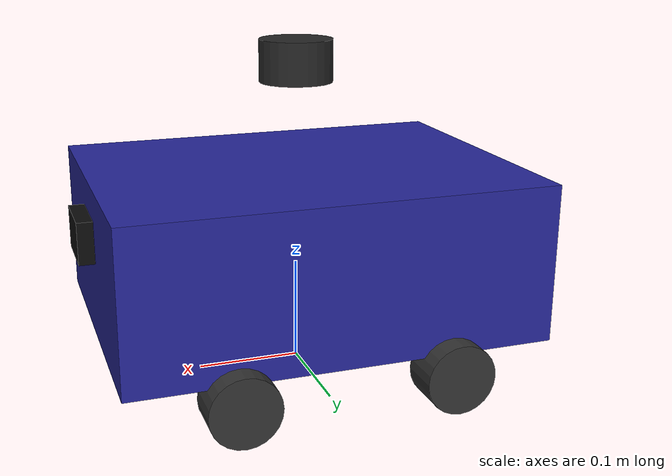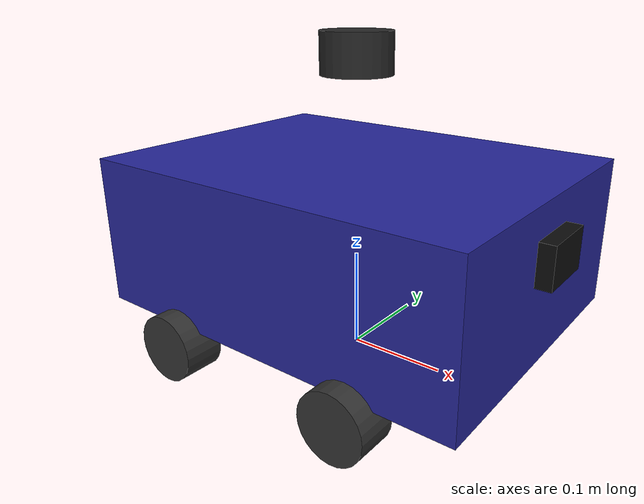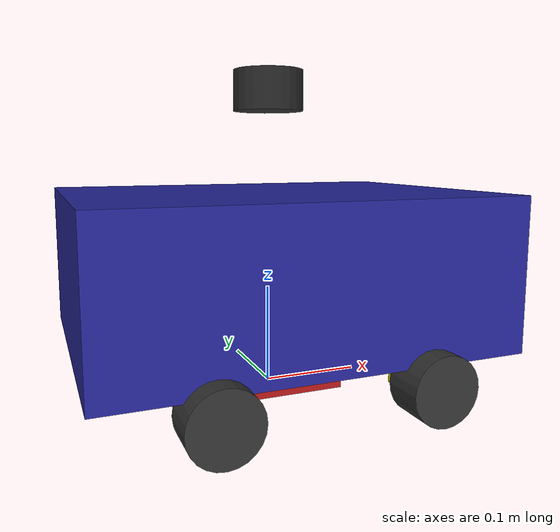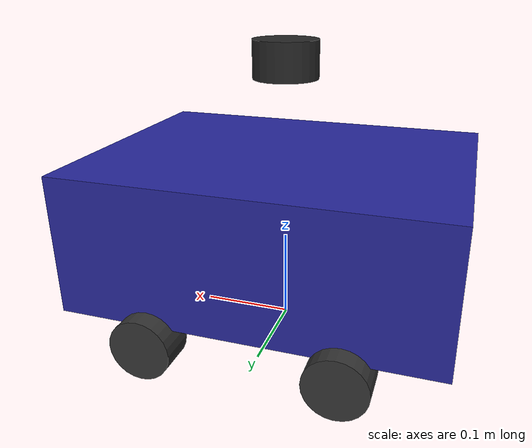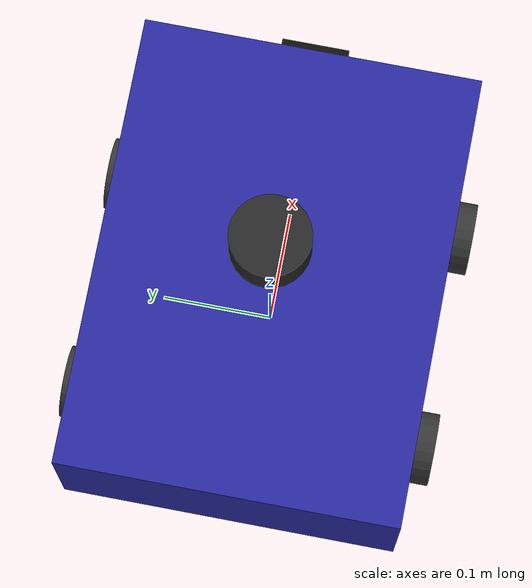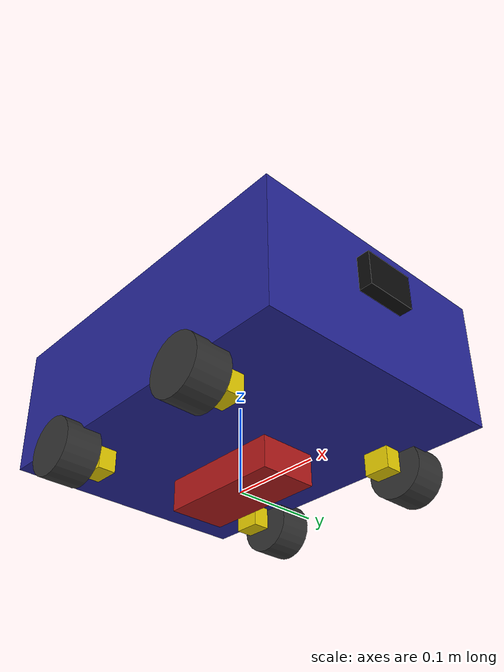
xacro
<?xml version="1.0"?>
<robot name="delivery_robot" xmlns:xacro="http://www.ros.org/wiki/xacro">

  <!-- ==================== Arguments ======================= -->
  <!--
    use_static_odom: When true, odom->base_footprint is a fixed (static) joint.
                     Set to false when ESP32 publishes real odometry on /odom.
  -->
  <xacro:arg name="use_static_odom" default="true"/>
  <!--
    use_gazebo: When true, includes gazebo.xacro for simulation plugins.
                Set to false for real robot operation.
  -->
  <xacro:arg name="use_gazebo" default="false"/>

  <!-- ==================== Includes ======================== -->
  <xacro:include filename="$(find robot_description)/urdf/materials.xacro"/>
  <xacro:include filename="$(find robot_description)/urdf/macros.xacro"/>

  <xacro:if value="$(arg use_gazebo)">
    <xacro:include filename="$(find robot_description)/urdf/gazebo.xacro"/>
  </xacro:if>

  <!-- ==================== Properties ====================== -->
  <!-- Chassis dimensions -->
  <xacro:property name="chassis_length"  value="0.40"/>
  <xacro:property name="chassis_width"   value="0.30"/>
  <xacro:property name="chassis_height"  value="0.15"/>
  <xacro:property name="chassis_mass"    value="3.0"/>
  <!-- Ground clearance: distance from ground to chassis bottom -->
  <xacro:property name="ground_clearance" value="0.05"/>

  <!-- Drive wheels -->
  <xacro:property name="wheel_radius"    value="0.033"/>
  <xacro:property name="wheel_width"     value="0.040"/>
  <xacro:property name="wheel_mass"      value="0.100"/>
  <xacro:property name="wheel_separation" value="0.30"/>
  <xacro:property name="wheel_base"       value="0.20"/>
  <!-- Wheel center Z = wheel_radius (so wheel bottom touches ground at z=0) -->
  <!-- But base_link is at ground_clearance above ground, so wheel z relative to base_link: -->
  <xacro:property name="wheel_z_offset"  value="${wheel_radius - ground_clearance}"/>

  <!-- Caster wheel -->
  <xacro:property name="caster_radius"   value="0.020"/>
  <xacro:property name="caster_mass"     value="0.050"/>

  <!-- Encoders -->
  <xacro:property name="enc_x" value="0.030"/>
  <xacro:property name="enc_y" value="0.020"/>
  <xacro:property name="enc_z" value="0.025"/>
  <xacro:property name="enc_mass" value="0.020"/>

  <!-- RPLidar C1M1 -->
  <xacro:property name="lidar_radius"  value="0.035"/>
  <xacro:property name="lidar_height"  value="0.040"/>
  <xacro:property name="lidar_mass"    value="0.190"/>
  <xacro:property name="lidar_z_offset" value="0.10"/>

  <!-- UGREEN Webcam -->
  <xacro:property name="cam_x_size"  value="0.030"/>
  <xacro:property name="cam_y_size"  value="0.060"/>
  <xacro:property name="cam_z_size"  value="0.040"/>
  <xacro:property name="cam_mass"    value="0.050"/>
  <xacro:property name="cam_x_offset" value="0.20"/>
  <xacro:property name="cam_z_offset" value="0.10"/>

  <!-- Raspberry Pi 4 -->
  <xacro:property name="rpi_x"  value="0.085"/>
  <xacro:property name="rpi_y"  value="0.056"/>
  <xacro:property name="rpi_z"  value="0.017"/>
  <xacro:property name="rpi_mass" value="0.045"/>
  <xacro:property name="rpi_x_offset" value="-0.05"/>
  <xacro:property name="rpi_z_offset" value="0.02"/>

  <!-- IMU (small PCB module) -->
  <xacro:property name="imu_x"  value="0.020"/>
  <xacro:property name="imu_y"  value="0.020"/>
  <xacro:property name="imu_z"  value="0.005"/>
  <xacro:property name="imu_mass" value="0.005"/>
  <xacro:property name="imu_x_offset" value="0.05"/>
  <xacro:property name="imu_y_offset" value="0.0"/>
  <xacro:property name="imu_z_offset" value="0.01"/>

  <!-- Battery (18650 4S pack) -->
  <xacro:property name="bat_x"  value="0.14"/>
  <xacro:property name="bat_y"  value="0.065"/>
  <xacro:property name="bat_z"  value="0.035"/>
  <xacro:property name="bat_mass" value="0.600"/>
  <xacro:property name="bat_x_offset" value="0.0"/>
  <xacro:property name="bat_z_offset" value="-0.04"/>

  <!--                     BASE_LINK (Chassis)                      -->
  <!--
    base_link is the robot's reference frame.
    Origin: center of the chassis, at ground_clearance above ground.
    X+ = forward, Y+ = left, Z+ = up (ROS standard).
  -->
  <link name="base_link">
    <visual>
      <geometry>
        <box size="${chassis_length} ${chassis_width} ${chassis_height}"/>
      </geometry>
      <material name="chassis_blue"/>
      <origin xyz="0 0 ${chassis_height/2}" rpy="0 0 0"/>
    </visual>
    <collision>
      <geometry>
        <box size="${chassis_length} ${chassis_width} ${chassis_height}"/>
      </geometry>
      <origin xyz="0 0 ${chassis_height/2}" rpy="0 0 0"/>
    </collision>
    <xacro:box_inertia mass="${chassis_mass}" x="${chassis_length}" y="${chassis_width}" z="${chassis_height}"/>
  </link>

  <!--                     BASE_FOOTPRINT                            -->
  <!--
    base_footprint is the ground projection of base_link.
    This is the standard ROS convention: the robot's "foot" on the floor.
    Nav2 uses this as the base_frame for costmaps.
  -->
  <link name="base_footprint"/>

  <joint name="base_footprint_to_base" type="fixed">
    <parent link="base_footprint"/>
    <child  link="base_link"/>
    <origin xyz="0 0 ${ground_clearance}" rpy="0 0 0"/>
  </joint>

  <xacro:if value="$(arg use_static_odom)">
    <link name="odom"/>
    <joint name="odom_to_base_footprint" type="fixed">
      <parent link="odom"/>
      <child  link="base_footprint"/>
      <origin xyz="0 0 0" rpy="0 0 0"/>
    </joint>
  </xacro:if>

  <!--                     DRIVE WHEELS                              -->
  <!--
    Four Mecanum drive wheels on front-left, front-right, back-left, back-right.
    Continuous joints allow rotation (needed for /joint_states from ESP32).
  -->
  <xacro:drive_wheel prefix="front_left"
    wheel_radius="${wheel_radius}"
    wheel_width="${wheel_width}"
    wheel_mass="${wheel_mass}"
    x_offset="${wheel_base / 2}"
    y_offset="${wheel_separation / 2}"
    z_offset="${wheel_z_offset}"/>

  <xacro:drive_wheel prefix="front_right"
    wheel_radius="${wheel_radius}"
    wheel_width="${wheel_width}"
    wheel_mass="${wheel_mass}"
    x_offset="${wheel_base / 2}"
    y_offset="${-wheel_separation / 2}"
    z_offset="${wheel_z_offset}"/>

  <xacro:drive_wheel prefix="back_left"
    wheel_radius="${wheel_radius}"
    wheel_width="${wheel_width}"
    wheel_mass="${wheel_mass}"
    x_offset="${-wheel_base / 2}"
    y_offset="${wheel_separation / 2}"
    z_offset="${wheel_z_offset}"/>

  <xacro:drive_wheel prefix="back_right"
    wheel_radius="${wheel_radius}"
    wheel_width="${wheel_width}"
    wheel_mass="${wheel_mass}"
    x_offset="${-wheel_base / 2}"
    y_offset="${-wheel_separation / 2}"
    z_offset="${wheel_z_offset}"/>

  <!--                     ENCODERS                                  -->
  <!--
    Encoders mounted next to each wheel axis.
    Fixed joints (they don't rotate - they READ the wheel rotation).
  -->
  <xacro:encoder prefix="front_left"
    enc_x="${enc_x}" enc_y="${enc_y}" enc_z="${enc_z}" enc_mass="${enc_mass}"
    x_offset="${wheel_base / 2}"
    y_offset="${wheel_separation / 2 - 0.04}"
    z_offset="${wheel_z_offset}"/>

  <xacro:encoder prefix="front_right"
    enc_x="${enc_x}" enc_y="${enc_y}" enc_z="${enc_z}" enc_mass="${enc_mass}"
    x_offset="${wheel_base / 2}"
    y_offset="${-wheel_separation / 2 + 0.04}"
    z_offset="${wheel_z_offset}"/>

  <xacro:encoder prefix="back_left"
    enc_x="${enc_x}" enc_y="${enc_y}" enc_z="${enc_z}" enc_mass="${enc_mass}"
    x_offset="${-wheel_base / 2}"
    y_offset="${wheel_separation / 2 - 0.04}"
    z_offset="${wheel_z_offset}"/>

  <xacro:encoder prefix="back_right"
    enc_x="${enc_x}" enc_y="${enc_y}" enc_z="${enc_z}" enc_mass="${enc_mass}"
    x_offset="${-wheel_base / 2}"
    y_offset="${-wheel_separation / 2 + 0.04}"
    z_offset="${wheel_z_offset}"/>

  <!--                     RPLIDAR C1M1                              -->
  <!--
    RPLidar C1M1 mounted on top of chassis, centered.
    Specs: 12m range, 360-degree, 460800 baud serial.
    Frame ID: "laser" (must match sllidar_node frame_id parameter).
  -->
  <link name="laser">
    <visual>
      <geometry>
        <cylinder radius="${lidar_radius}" length="${lidar_height}"/>
      </geometry>
      <material name="lidar_dark"/>
      <origin xyz="0 0 0" rpy="0 0 0"/>
    </visual>
    <collision>
      <geometry>
        <cylinder radius="${lidar_radius}" length="${lidar_height}"/>
      </geometry>
      <origin xyz="0 0 0" rpy="0 0 0"/>
    </collision>
    <xacro:cylinder_inertia mass="${lidar_mass}" radius="${lidar_radius}" length="${lidar_height}"/>
  </link>

  <joint name="base_to_laser" type="fixed">
    <parent link="base_link"/>
    <child  link="laser"/>
    <!-- Lidar centered on top of chassis -->
    <origin xyz="0 0 ${chassis_height + lidar_z_offset}" rpy="0 0 0"/>
  </joint>

  <!--                     UGREEN WEBCAM                             -->
  <!--
    UGREEN USB webcam, front-facing.
    camera_link: the physical camera body frame.
    camera_optical_frame: ROS camera convention (Z forward, X right, Y down).
  -->
  <link name="camera_link">
    <visual>
      <geometry>
        <box size="${cam_x_size} ${cam_y_size} ${cam_z_size}"/>
      </geometry>
      <material name="camera_black"/>
      <origin xyz="0 0 0" rpy="0 0 0"/>
    </visual>
    <collision>
      <geometry>
        <box size="${cam_x_size} ${cam_y_size} ${cam_z_size}"/>
      </geometry>
      <origin xyz="0 0 0" rpy="0 0 0"/>
    </collision>
    <xacro:box_inertia mass="${cam_mass}" x="${cam_x_size}" y="${cam_y_size}" z="${cam_z_size}"/>
  </link>

  <joint name="base_to_camera" type="fixed">
    <parent link="base_link"/>
    <child  link="camera_link"/>
    <!-- Camera at front of chassis, facing forward -->
    <origin xyz="${cam_x_offset} 0 ${cam_z_offset}" rpy="0 0 0"/>
  </joint>

  <!-- Camera optical frame (ROS convention) -->
  <link name="camera_optical_frame"/>

  <joint name="camera_optical_joint" type="fixed">
    <parent link="camera_link"/>
    <child  link="camera_optical_frame"/>
    <!-- Rotate from camera body frame to optical frame -->
    <origin xyz="0 0 0" rpy="${-pi/2} 0 ${-pi/2}"/>
  </joint>

  <!--                     RASPBERRY PI 4                            -->
  <!--
    Raspberry Pi 4 compute module, mounted inside chassis.
    Position: slightly rear of center, above chassis floor.
  -->
  <link name="raspberry_pi">
    <visual>
      <geometry>
        <box size="${rpi_x} ${rpi_y} ${rpi_z}"/>
      </geometry>
      <material name="rpi_green"/>
      <origin xyz="0 0 0" rpy="0 0 0"/>
    </visual>
    <collision>
      <geometry>
        <box size="${rpi_x} ${rpi_y} ${rpi_z}"/>
      </geometry>
      <origin xyz="0 0 0" rpy="0 0 0"/>
    </collision>
    <xacro:box_inertia mass="${rpi_mass}" x="${rpi_x}" y="${rpi_y}" z="${rpi_z}"/>
  </link>

  <joint name="base_to_rpi" type="fixed">
    <parent link="base_link"/>
    <child  link="raspberry_pi"/>
    <origin xyz="${rpi_x_offset} 0 ${rpi_z_offset}" rpy="0 0 0"/>
  </joint>

  <!--                     IMU                                       -->
  <!--
    IMU sensor (e.g., MPU6050/BNO055), mounted on chassis floor.
    Position: front of center for clean rotation readings.
    Will publish /imu/data when connected.
  -->
  <link name="imu_link">
    <visual>
      <geometry>
        <box size="${imu_x} ${imu_y} ${imu_z}"/>
      </geometry>
      <material name="imu_orange"/>
      <origin xyz="0 0 0" rpy="0 0 0"/>
    </visual>
    <collision>
      <geometry>
        <box size="${imu_x} ${imu_y} ${imu_z}"/>
      </geometry>
      <origin xyz="0 0 0" rpy="0 0 0"/>
    </collision>
    <xacro:box_inertia mass="${imu_mass}" x="${imu_x}" y="${imu_y}" z="${imu_z}"/>
  </link>

  <joint name="base_to_imu" type="fixed">
    <parent link="base_link"/>
    <child  link="imu_link"/>
    <origin xyz="${imu_x_offset} ${imu_y_offset} ${imu_z_offset}" rpy="0 0 0"/>
  </joint>

  <!--                     BATTERY                                   -->
  <!--
    Battery pack (4S 18650), mounted at bottom of chassis.
    Low position keeps center of gravity low for stability.
  -->
  <link name="battery">
    <visual>
      <geometry>
        <box size="${bat_x} ${bat_y} ${bat_z}"/>
      </geometry>
      <material name="battery_red"/>
      <origin xyz="0 0 0" rpy="0 0 0"/>
    </visual>
    <collision>
      <geometry>
        <box size="${bat_x} ${bat_y} ${bat_z}"/>
      </geometry>
      <origin xyz="0 0 0" rpy="0 0 0"/>
    </collision>
    <xacro:box_inertia mass="${bat_mass}" x="${bat_x}" y="${bat_y}" z="${bat_z}"/>
  </link>

  <joint name="base_to_battery" type="fixed">
    <parent link="base_link"/>
    <child  link="battery"/>
    <origin xyz="${bat_x_offset} 0 ${bat_z_offset}" rpy="0 0 0"/>
  </joint>

</robot>

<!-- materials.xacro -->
<robot xmlns:xacro="http://www.ros.org/wiki/xacro">

  <!-- Chassis: dark blue -->
  <material name="chassis_blue">
    <color rgba="0.15 0.15 0.6 1.0"/>
  </material>

  <!-- Wheels: dark rubber gray -->
  <material name="wheel_gray">
    <color rgba="0.2 0.2 0.2 1.0"/>
  </material>

  <!-- Caster wheel: bronze -->
  <material name="caster_bronze">
    <color rgba="0.6 0.4 0.2 1.0"/>
  </material>

  <!-- RPLidar: dark gray cylinder -->
  <material name="lidar_dark">
    <color rgba="0.15 0.15 0.15 1.0"/>
  </material>

  <!-- Camera: matte black -->
  <material name="camera_black">
    <color rgba="0.05 0.05 0.05 1.0"/>
  </material>

  <!-- Raspberry Pi: PCB green -->
  <material name="rpi_green">
    <color rgba="0.0 0.5 0.2 1.0"/>
  </material>

  <!-- IMU: orange -->
  <material name="imu_orange">
    <color rgba="0.9 0.5 0.0 1.0"/>
  </material>

  <!-- Battery: red -->
  <material name="battery_red">
    <color rgba="0.7 0.1 0.1 1.0"/>
  </material>

  <!-- Encoder: yellow -->
  <material name="encoder_yellow">
    <color rgba="0.9 0.8 0.0 1.0"/>
  </material>

  <!-- Generic white -->
  <material name="white">
    <color rgba="1.0 1.0 1.0 1.0"/>
  </material>

</robot>

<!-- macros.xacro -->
<robot xmlns:xacro="http://www.ros.org/wiki/xacro">

  <!-- ============= Inertia helpers ======================== -->
  <!-- Cylinder inertia (aligned along Z axis) -->
  <xacro:macro name="cylinder_inertia" params="mass radius length">
    <inertial>
      <mass value="${mass}"/>
      <inertia
        ixx="${(1.0/12.0) * mass * (3*radius*radius + length*length)}"
        ixy="0" ixz="0"
        iyy="${(1.0/12.0) * mass * (3*radius*radius + length*length)}"
        iyz="0"
        izz="${(1.0/2.0) * mass * radius * radius}"/>
    </inertial>
  </xacro:macro>

  <!-- Box inertia -->
  <xacro:macro name="box_inertia" params="mass x y z">
    <inertial>
      <mass value="${mass}"/>
      <inertia
        ixx="${(1.0/12.0) * mass * (y*y + z*z)}"
        ixy="0" ixz="0"
        iyy="${(1.0/12.0) * mass * (x*x + z*z)}"
        iyz="0"
        izz="${(1.0/12.0) * mass * (x*x + y*y)}"/>
    </inertial>
  </xacro:macro>

  <!-- Sphere inertia -->
  <xacro:macro name="sphere_inertia" params="mass radius">
    <inertial>
      <mass value="${mass}"/>
      <inertia
        ixx="${(2.0/5.0) * mass * radius * radius}"
        ixy="0" ixz="0"
        iyy="${(2.0/5.0) * mass * radius * radius}"
        iyz="0"
        izz="${(2.0/5.0) * mass * radius * radius}"/>
    </inertial>
  </xacro:macro>

  <!-- ============= Drive Wheel Macro ====================== -->
  <xacro:macro name="drive_wheel" params="prefix wheel_radius wheel_width wheel_mass x_offset y_offset z_offset">

    <!-- Wheel link -->
    <link name="${prefix}_wheel">
      <visual>
        <geometry>
          <cylinder radius="${wheel_radius}" length="${wheel_width}"/>
        </geometry>
        <material name="wheel_gray"/>
        <!-- Rotate cylinder to align with Y axis (wheel orientation) -->
        <origin xyz="0 0 0" rpy="${pi/2} 0 0"/>
      </visual>
      <collision>
        <geometry>
          <cylinder radius="${wheel_radius}" length="${wheel_width}"/>
        </geometry>
        <origin xyz="0 0 0" rpy="${pi/2} 0 0"/>
      </collision>
      <xacro:cylinder_inertia mass="${wheel_mass}" radius="${wheel_radius}" length="${wheel_width}"/>
    </link>

    <!-- Continuous joint: wheel can rotate freely -->
    <!-- When ESP32 provides odometry, this joint receives /joint_states -->
    <joint name="${prefix}_wheel_joint" type="continuous">
      <parent link="base_link"/>
      <child  link="${prefix}_wheel"/>
      <origin xyz="${x_offset} ${y_offset} ${z_offset}" rpy="0 0 0"/>
      <axis xyz="0 1 0"/>
      <!-- Friction for Gazebo simulation -->
      <dynamics damping="0.1" friction="0.1"/>
    </joint>

  </xacro:macro>

  <!-- ============= Caster Wheel Macro ===================== -->
  <xacro:macro name="caster_wheel" params="prefix caster_radius caster_mass x_offset y_offset z_offset">

    <link name="${prefix}_caster_wheel">
      <visual>
        <geometry>
          <sphere radius="${caster_radius}"/>
        </geometry>
        <material name="caster_bronze"/>
        <origin xyz="0 0 0" rpy="0 0 0"/>
      </visual>
      <collision>
        <geometry>
          <sphere radius="${caster_radius}"/>
        </geometry>
        <origin xyz="0 0 0" rpy="0 0 0"/>
      </collision>
      <xacro:sphere_inertia mass="${caster_mass}" radius="${caster_radius}"/>
    </link>

    <joint name="${prefix}_caster_joint" type="fixed">
      <parent link="base_link"/>
      <child  link="${prefix}_caster_wheel"/>
      <origin xyz="${x_offset} ${y_offset} ${z_offset}" rpy="0 0 0"/>
    </joint>

  </xacro:macro>

  <!-- ============= Encoder Macro ========================== -->
  <xacro:macro name="encoder" params="prefix enc_x enc_y enc_z enc_mass x_offset y_offset z_offset">

    <link name="${prefix}_encoder">
      <visual>
        <geometry>
          <box size="${enc_x} ${enc_y} ${enc_z}"/>
        </geometry>
        <material name="encoder_yellow"/>
        <origin xyz="0 0 0" rpy="0 0 0"/>
      </visual>
      <collision>
        <geometry>
          <box size="${enc_x} ${enc_y} ${enc_z}"/>
        </geometry>
        <origin xyz="0 0 0" rpy="0 0 0"/>
      </collision>
      <xacro:box_inertia mass="${enc_mass}" x="${enc_x}" y="${enc_y}" z="${enc_z}"/>
    </link>

    <joint name="${prefix}_encoder_joint" type="fixed">
      <parent link="base_link"/>
      <child  link="${prefix}_encoder"/>
      <origin xyz="${x_offset} ${y_offset} ${z_offset}" rpy="0 0 0"/>
    </joint>

  </xacro:macro>

</robot>
